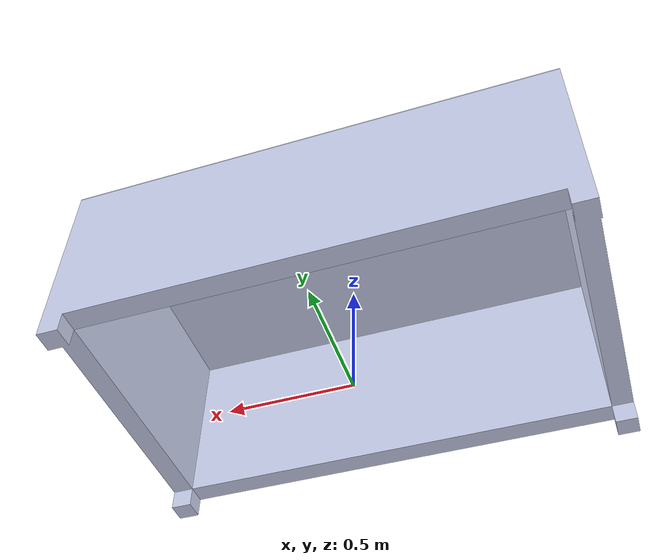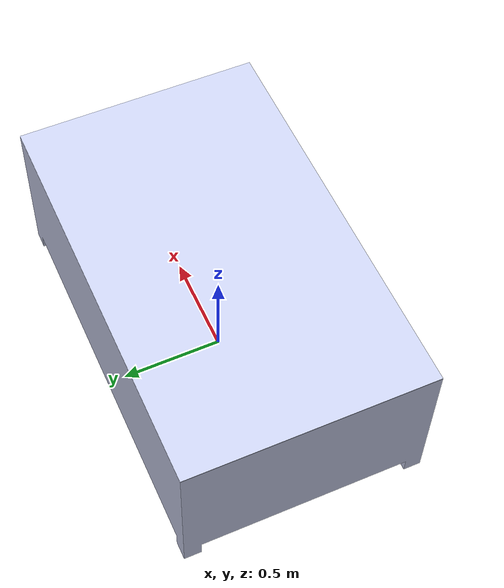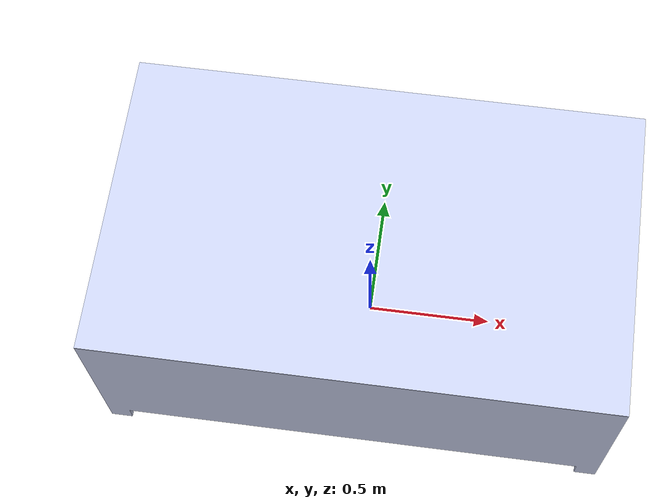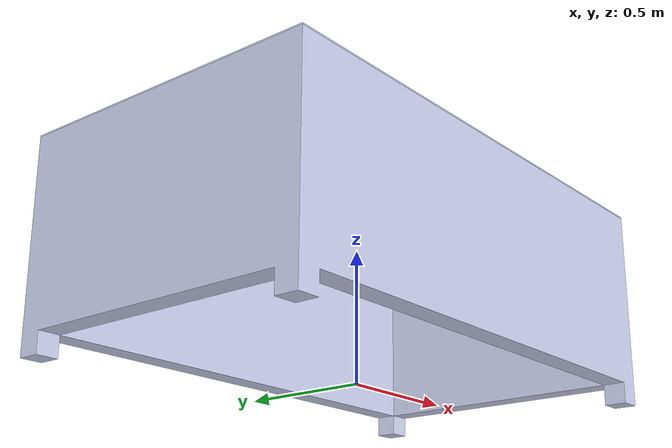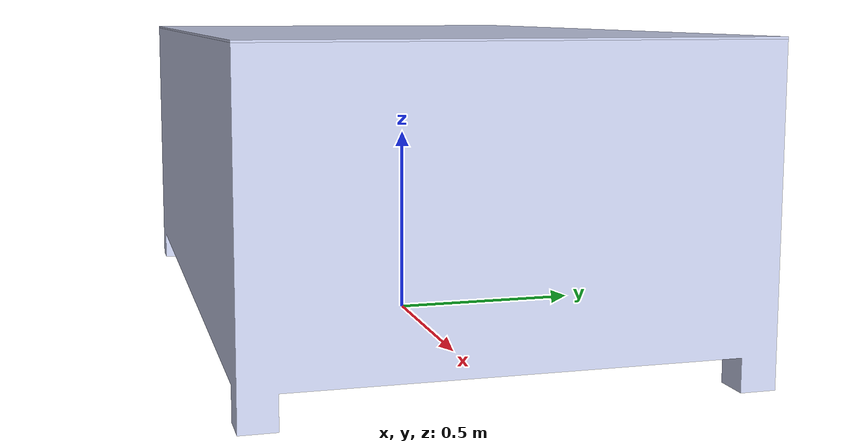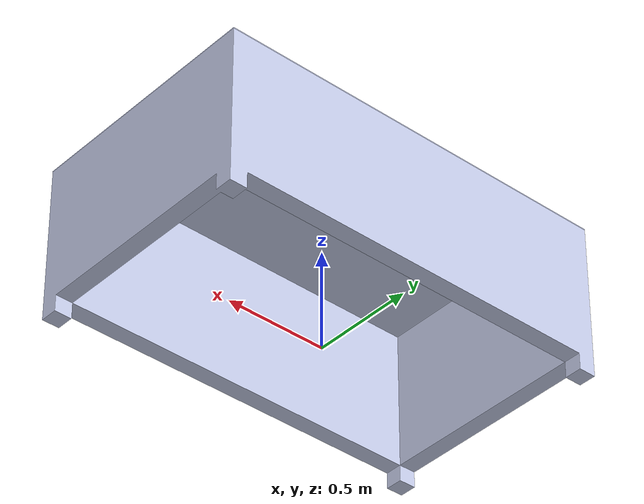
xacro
<?xml version="1.0" encoding="utf-8"?>
<robot name="Table2" xmlns:xacro="http://www.ros.org/wiki/xacro">
  <link
    name="bottom_table">
    <inertial>
      <origin
        xyz="-8.8818E-16 -6.6613E-16 0.4275"
        rpy="0 0 0" />
      <mass
        value="360.5" />
      <inertia
        ixx="99.907"
        ixy="-1.3227E-14"
        ixz="-2.5924E-14"
        iyy="204.14"
        iyz="5.3806E-15"
        izz="274.1" />
    </inertial>
    <visual>
      <origin
        xyz="0 0 0"
        rpy="0 0 0" />
      <geometry>
        <mesh
          filename="package://cai_env/meshes/bottom_table.STL" />
      </geometry>
      <material
        name="">
        <color
          rgba="0.79216 0.81961 0.93333 1" />
      </material>
    </visual>
    <collision>
      <origin
        xyz="0 0 0"
        rpy="0 0 0" />
      <geometry>
        <mesh
          filename="package://cai_env/meshes/bottom_table.STL" />
      </geometry>
    </collision>
  </link>
  <link
    name="table_cover">
    <inertial>
      <origin
        xyz="1.1102E-16 2.2204E-16 0.7825"
        rpy="0 0 0" />
      <mass
        value="11.88" />
      <inertia
        ixx="1.4256"
        ixy="5.9447E-16"
        ixz="-1.254E-33"
        iyy="3.8812"
        iyz="-2.8912E-19"
        izz="5.3068" />
    </inertial>
    <visual>
      <origin
        xyz="0 0 0"
        rpy="0 0 0" />
      <geometry>
        <mesh
          filename="package://cai_env/meshes/table_cover.STL" />
      </geometry>
      <material
        name="">
        <color
          rgba="0.79216 0.81961 0.93333 1" />
      </material>
    </visual>
    <collision>
      <origin
        xyz="0 0 0"
        rpy="0 0 0" />
      <geometry>
        <mesh
          filename="package://cai_env/meshes/table_cover.STL" />
      </geometry>
    </collision>
  </link>
  <joint
    name="table_joint"
    type="fixed">
    <origin
      xyz="0 0 0"
      rpy="0 0 0" />
    <parent
      link="bottom_table" />
    <child
      link="table_cover" />
    <axis
      xyz="0 0 0" />
  </joint>

  <gazebo reference="bottom_table">
    <material>Gazebo/Gray</material>
  </gazebo>

  <gazebo reference="table_cover">
    <material>Gazebo/Grass</material>
  </gazebo>

</robot>
